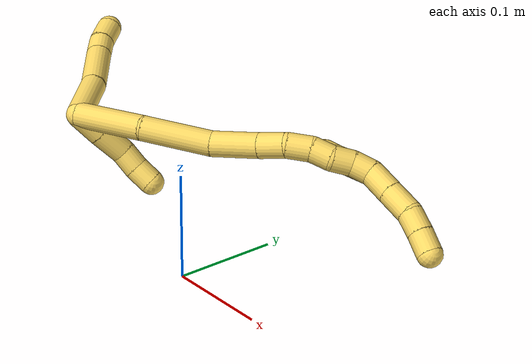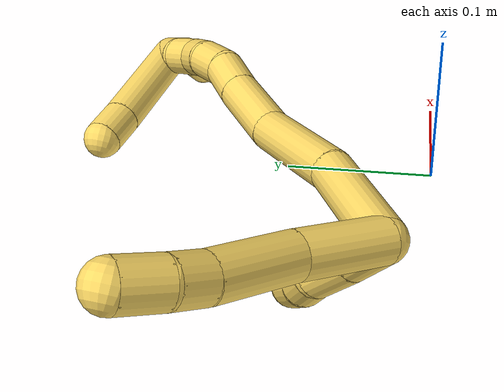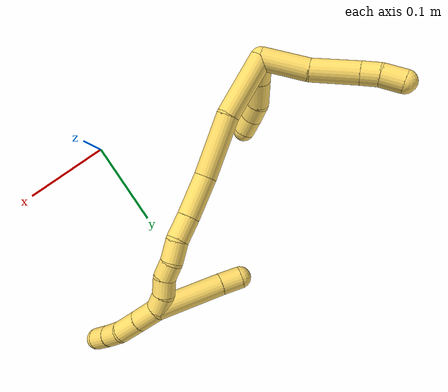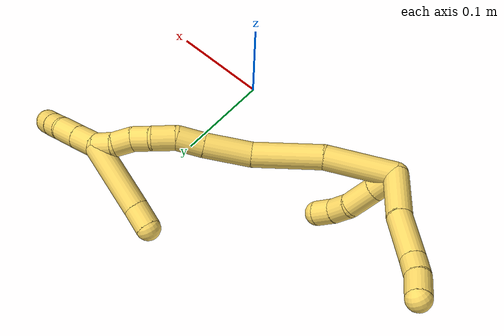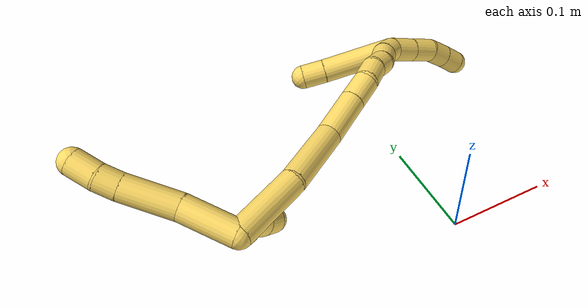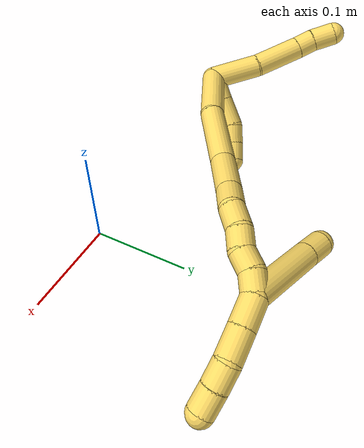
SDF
<sdf version="1.7">
 <world name="default">
  <model name="5">
   <static>0</static>
   <link name="5">
    <collision name="collision-cylinder-e_1_2_8">
     <pose>-0.02466 -0.00053 -0.009704 3.08703 -1.19538 -3.06147</pose>
     <geometry><cylinder><radius>0.0125</radius><length>0.053011</length></cylinder></geometry>
     <surface>
      <friction><ode><mu>1.16</mu><mu2>1.16</mu2><slip1>0</slip1><slip2>0</slip2></ode></friction>
      <contact><ode><kp>1e+06</kp><kd>1</kd><max_vel>0</max_vel><min_depth>0.001</min_depth></ode></contact>
     </surface>
    </collision>
    <visual name="visual-cylinder-e_1_2_8">
     <pose>-0.02466 -0.00053 -0.009704 3.08703 -1.19538 -3.06147</pose>
     <geometry><cylinder><radius>0.0125</radius><length>0.053011</length></cylinder></geometry>
     <material><ambient>1 0.858824 0.4 1</ambient></material>
    </visual>
    <collision name="collision-cylinder-e_2_8_9">
     <pose>-0.072739 -0.005918 -0.029535 2.69431 -1.12359 -2.44811</pose>
     <geometry><cylinder><radius>0.0125</radius><length>0.051947</length></cylinder></geometry>
     <surface>
      <friction><ode><mu>1.16</mu><mu2>1.16</mu2><slip1>0</slip1><slip2>0</slip2></ode></friction>
      <contact><ode><kp>1e+06</kp><kd>1</kd><max_vel>0</max_vel><min_depth>0.001</min_depth></ode></contact>
     </surface>
    </collision>
    <visual name="visual-cylinder-e_2_8_9">
     <pose>-0.072739 -0.005918 -0.029535 2.69431 -1.12359 -2.44811</pose>
     <geometry><cylinder><radius>0.0125</radius><length>0.051947</length></cylinder></geometry>
     <material><ambient>1 0.858824 0.4 1</ambient></material>
    </visual>
    <collision name="collision-cylinder-e_3_9_10">
     <pose>-0.105572 -0.012618 -0.042555 2.57463 -1.22149 -2.35288</pose>
     <geometry><cylinder><radius>0.0125</radius><length>0.020039</length></cylinder></geometry>
     <surface>
      <friction><ode><mu>1.16</mu><mu2>1.16</mu2><slip1>0</slip1><slip2>0</slip2></ode></friction>
      <contact><ode><kp>1e+06</kp><kd>1</kd><max_vel>0</max_vel><min_depth>0.001</min_depth></ode></contact>
     </surface>
    </collision>
    <visual name="visual-cylinder-e_3_9_10">
     <pose>-0.105572 -0.012618 -0.042555 2.57463 -1.22149 -2.35288</pose>
     <geometry><cylinder><radius>0.0125</radius><length>0.020039</length></cylinder></geometry>
     <material><ambient>1 0.858824 0.4 1</ambient></material>
    </visual>
    <collision name="collision-cylinder-e_4_10_6">
     <pose>-0.127033 -0.014503 -0.048791 3.12863 -1.30005 -3.12454</pose>
     <geometry><cylinder><radius>0.0125</radius><length>0.025002</length></cylinder></geometry>
     <surface>
      <friction><ode><mu>1.16</mu><mu2>1.16</mu2><slip1>0</slip1><slip2>0</slip2></ode></friction>
      <contact><ode><kp>1e+06</kp><kd>1</kd><max_vel>0</max_vel><min_depth>0.001</min_depth></ode></contact>
     </surface>
    </collision>
    <visual name="visual-cylinder-e_4_10_6">
     <pose>-0.127033 -0.014503 -0.048791 3.12863 -1.30005 -3.12454</pose>
     <geometry><cylinder><radius>0.0125</radius><length>0.025002</length></cylinder></geometry>
     <material><ambient>1 0.858824 0.4 1</ambient></material>
    </visual>
    <collision name="collision-cylinder-e_1_2_11">
     <pose>0.000751 0.012996 -0.004736 -1.92026 0.054268 -0.077515</pose>
     <geometry><cylinder><radius>0.0125</radius><length>0.027706</length></cylinder></geometry>
     <surface>
      <friction><ode><mu>1.16</mu><mu2>1.16</mu2><slip1>0</slip1><slip2>0</slip2></ode></friction>
      <contact><ode><kp>1e+06</kp><kd>1</kd><max_vel>0</max_vel><min_depth>0.001</min_depth></ode></contact>
     </surface>
    </collision>
    <visual name="visual-cylinder-e_1_2_11">
     <pose>0.000751 0.012996 -0.004736 -1.92026 0.054268 -0.077515</pose>
     <geometry><cylinder><radius>0.0125</radius><length>0.027706</length></cylinder></geometry>
     <material><ambient>1 0.858824 0.4 1</ambient></material>
    </visual>
    <collision name="collision-cylinder-e_2_11_12">
     <pose>0.00162 0.040628 -0.014446 -1.89837 0.007576 -0.010576</pose>
     <geometry><cylinder><radius>0.0125</radius><length>0.030915</length></cylinder></geometry>
     <surface>
      <friction><ode><mu>1.16</mu><mu2>1.16</mu2><slip1>0</slip1><slip2>0</slip2></ode></friction>
      <contact><ode><kp>1e+06</kp><kd>1</kd><max_vel>0</max_vel><min_depth>0.001</min_depth></ode></contact>
     </surface>
    </collision>
    <visual name="visual-cylinder-e_2_11_12">
     <pose>0.00162 0.040628 -0.014446 -1.89837 0.007576 -0.010576</pose>
     <geometry><cylinder><radius>0.0125</radius><length>0.030915</length></cylinder></geometry>
     <material><ambient>1 0.858824 0.4 1</ambient></material>
    </visual>
    <collision name="collision-cylinder-e_3_12_13">
     <pose>0.005074 0.064953 -0.021584 -1.79059 0.324254 -0.402734</pose>
     <geometry><cylinder><radius>0.0125</radius><length>0.020949</length></cylinder></geometry>
     <surface>
      <friction><ode><mu>1.16</mu><mu2>1.16</mu2><slip1>0</slip1><slip2>0</slip2></ode></friction>
      <contact><ode><kp>1e+06</kp><kd>1</kd><max_vel>0</max_vel><min_depth>0.001</min_depth></ode></contact>
     </surface>
    </collision>
    <visual name="visual-cylinder-e_3_12_13">
     <pose>0.005074 0.064953 -0.021584 -1.79059 0.324254 -0.402734</pose>
     <geometry><cylinder><radius>0.0125</radius><length>0.020949</length></cylinder></geometry>
     <material><ambient>1 0.858824 0.4 1</ambient></material>
    </visual>
    <collision name="collision-cylinder-e_4_13_5">
     <pose>0.011355 0.084423 -0.023944 -1.59077 0.292276 -0.298086</pose>
     <geometry><cylinder><radius>0.0125</radius><length>0.02043</length></cylinder></geometry>
     <surface>
      <friction><ode><mu>1.16</mu><mu2>1.16</mu2><slip1>0</slip1><slip2>0</slip2></ode></friction>
      <contact><ode><kp>1e+06</kp><kd>1</kd><max_vel>0</max_vel><min_depth>0.001</min_depth></ode></contact>
     </surface>
    </collision>
    <visual name="visual-cylinder-e_4_13_5">
     <pose>0.011355 0.084423 -0.023944 -1.59077 0.292276 -0.298086</pose>
     <geometry><cylinder><radius>0.0125</radius><length>0.02043</length></cylinder></geometry>
     <material><ambient>1 0.858824 0.4 1</ambient></material>
    </visual>
    <collision name="collision-cylinder-e_1_2_14">
     <pose>0.000848 0.029568 0.018937 -1.00115 0.024134 -0.013203</pose>
     <geometry><cylinder><radius>0.0125</radius><length>0.070245</length></cylinder></geometry>
     <surface>
      <friction><ode><mu>1.16</mu><mu2>1.16</mu2><slip1>0</slip1><slip2>0</slip2></ode></friction>
      <contact><ode><kp>1e+06</kp><kd>1</kd><max_vel>0</max_vel><min_depth>0.001</min_depth></ode></contact>
     </surface>
    </collision>
    <visual name="visual-cylinder-e_1_2_14">
     <pose>0.000848 0.029568 0.018937 -1.00115 0.024134 -0.013203</pose>
     <geometry><cylinder><radius>0.0125</radius><length>0.070245</length></cylinder></geometry>
     <material><ambient>1 0.858824 0.4 1</ambient></material>
    </visual>
    <collision name="collision-cylinder-e_2_14_15">
     <pose>-0.001087 0.091445 0.051314 -1.17661 -0.079349 0.052949</pose>
     <geometry><cylinder><radius>0.0125</radius><length>0.070206</length></cylinder></geometry>
     <surface>
      <friction><ode><mu>1.16</mu><mu2>1.16</mu2><slip1>0</slip1><slip2>0</slip2></ode></friction>
      <contact><ode><kp>1e+06</kp><kd>1</kd><max_vel>0</max_vel><min_depth>0.001</min_depth></ode></contact>
     </surface>
    </collision>
    <visual name="visual-cylinder-e_2_14_15">
     <pose>-0.001087 0.091445 0.051314 -1.17661 -0.079349 0.052949</pose>
     <geometry><cylinder><radius>0.0125</radius><length>0.070206</length></cylinder></geometry>
     <material><ambient>1 0.858824 0.4 1</ambient></material>
    </visual>
    <collision name="collision-cylinder-e_3_15_16">
     <pose>-0.007215 0.143082 0.078233 -0.961795 -0.141034 0.073674</pose>
     <geometry><cylinder><radius>0.0125</radius><length>0.047602</length></cylinder></geometry>
     <surface>
      <friction><ode><mu>1.16</mu><mu2>1.16</mu2><slip1>0</slip1><slip2>0</slip2></ode></friction>
      <contact><ode><kp>1e+06</kp><kd>1</kd><max_vel>0</max_vel><min_depth>0.001</min_depth></ode></contact>
     </surface>
    </collision>
    <visual name="visual-cylinder-e_3_15_16">
     <pose>-0.007215 0.143082 0.078233 -0.961795 -0.141034 0.073674</pose>
     <geometry><cylinder><radius>0.0125</radius><length>0.047602</length></cylinder></geometry>
     <material><ambient>1 0.858824 0.4 1</ambient></material>
    </visual>
    <collision name="collision-cylinder-e_4_16_17">
     <pose>-0.012464 0.172802 0.100334 -0.878238 -0.140045 0.065864</pose>
     <geometry><cylinder><radius>0.0125</radius><length>0.027272</length></cylinder></geometry>
     <surface>
      <friction><ode><mu>1.16</mu><mu2>1.16</mu2><slip1>0</slip1><slip2>0</slip2></ode></friction>
      <contact><ode><kp>1e+06</kp><kd>1</kd><max_vel>0</max_vel><min_depth>0.001</min_depth></ode></contact>
     </surface>
    </collision>
    <visual name="visual-cylinder-e_4_16_17">
     <pose>-0.012464 0.172802 0.100334 -0.878238 -0.140045 0.065864</pose>
     <geometry><cylinder><radius>0.0125</radius><length>0.027272</length></cylinder></geometry>
     <material><ambient>1 0.858824 0.4 1</ambient></material>
    </visual>
    <collision name="collision-cylinder-e_5_17_18">
     <pose>-0.016427 0.194284 0.113247 -1.20158 -0.171439 0.117639</pose>
     <geometry><cylinder><radius>0.0125</radius><length>0.024137</length></cylinder></geometry>
     <surface>
      <friction><ode><mu>1.16</mu><mu2>1.16</mu2><slip1>0</slip1><slip2>0</slip2></ode></friction>
      <contact><ode><kp>1e+06</kp><kd>1</kd><max_vel>0</max_vel><min_depth>0.001</min_depth></ode></contact>
     </surface>
    </collision>
    <visual name="visual-cylinder-e_5_17_18">
     <pose>-0.016427 0.194284 0.113247 -1.20158 -0.171439 0.117639</pose>
     <geometry><cylinder><radius>0.0125</radius><length>0.024137</length></cylinder></geometry>
     <material><ambient>1 0.858824 0.4 1</ambient></material>
    </visual>
    <collision name="collision-cylinder-e_6_18_19">
     <pose>-0.017646 0.215124 0.120099 -1.31406 0.083063 -0.064087</pose>
     <geometry><cylinder><radius>0.0125</radius><length>0.020231</length></cylinder></geometry>
     <surface>
      <friction><ode><mu>1.16</mu><mu2>1.16</mu2><slip1>0</slip1><slip2>0</slip2></ode></friction>
      <contact><ode><kp>1e+06</kp><kd>1</kd><max_vel>0</max_vel><min_depth>0.001</min_depth></ode></contact>
     </surface>
    </collision>
    <visual name="visual-cylinder-e_6_18_19">
     <pose>-0.017646 0.215124 0.120099 -1.31406 0.083063 -0.064087</pose>
     <geometry><cylinder><radius>0.0125</radius><length>0.020231</length></cylinder></geometry>
     <material><ambient>1 0.858824 0.4 1</ambient></material>
    </visual>
    <collision name="collision-cylinder-e_7_19_20">
     <pose>-0.019149 0.234606 0.123836 -1.45033 -0.23449 0.20802</pose>
     <geometry><cylinder><radius>0.0125</radius><length>0.020158</length></cylinder></geometry>
     <surface>
      <friction><ode><mu>1.16</mu><mu2>1.16</mu2><slip1>0</slip1><slip2>0</slip2></ode></friction>
      <contact><ode><kp>1e+06</kp><kd>1</kd><max_vel>0</max_vel><min_depth>0.001</min_depth></ode></contact>
     </surface>
    </collision>
    <visual name="visual-cylinder-e_7_19_20">
     <pose>-0.019149 0.234606 0.123836 -1.45033 -0.23449 0.20802</pose>
     <geometry><cylinder><radius>0.0125</radius><length>0.020158</length></cylinder></geometry>
     <material><ambient>1 0.858824 0.4 1</ambient></material>
    </visual>
    <collision name="collision-cylinder-e_8_20_1">
     <pose>-0.020554 0.254138 0.127154 -1.35587 0.093104 -0.074992</pose>
     <geometry><cylinder><radius>0.0125</radius><length>0.020149</length></cylinder></geometry>
     <surface>
      <friction><ode><mu>1.16</mu><mu2>1.16</mu2><slip1>0</slip1><slip2>0</slip2></ode></friction>
      <contact><ode><kp>1e+06</kp><kd>1</kd><max_vel>0</max_vel><min_depth>0.001</min_depth></ode></contact>
     </surface>
    </collision>
    <visual name="visual-cylinder-e_8_20_1">
     <pose>-0.020554 0.254138 0.127154 -1.35587 0.093104 -0.074992</pose>
     <geometry><cylinder><radius>0.0125</radius><length>0.020149</length></cylinder></geometry>
     <material><ambient>1 0.858824 0.4 1</ambient></material>
    </visual>
    <collision name="collision-cylinder-e_1_1_21">
     <pose>-0.012068 0.274827 0.13375 -1.18231 0.570464 -0.388677</pose>
     <geometry><cylinder><radius>0.0125</radius><length>0.027958</length></cylinder></geometry>
     <surface>
      <friction><ode><mu>1.16</mu><mu2>1.16</mu2><slip1>0</slip1><slip2>0</slip2></ode></friction>
      <contact><ode><kp>1e+06</kp><kd>1</kd><max_vel>0</max_vel><min_depth>0.001</min_depth></ode></contact>
     </surface>
    </collision>
    <visual name="visual-cylinder-e_1_1_21">
     <pose>-0.012068 0.274827 0.13375 -1.18231 0.570464 -0.388677</pose>
     <geometry><cylinder><radius>0.0125</radius><length>0.027958</length></cylinder></geometry>
     <material><ambient>1 0.858824 0.4 1</ambient></material>
    </visual>
    <collision name="collision-cylinder-e_2_21_22">
     <pose>0.003119 0.296574 0.142917 -1.16145 0.573074 -0.381981</pose>
     <geometry><cylinder><radius>0.0125</radius><length>0.028174</length></cylinder></geometry>
     <surface>
      <friction><ode><mu>1.16</mu><mu2>1.16</mu2><slip1>0</slip1><slip2>0</slip2></ode></friction>
      <contact><ode><kp>1e+06</kp><kd>1</kd><max_vel>0</max_vel><min_depth>0.001</min_depth></ode></contact>
     </surface>
    </collision>
    <visual name="visual-cylinder-e_2_21_22">
     <pose>0.003119 0.296574 0.142917 -1.16145 0.573074 -0.381981</pose>
     <geometry><cylinder><radius>0.0125</radius><length>0.028174</length></cylinder></geometry>
     <material><ambient>1 0.858824 0.4 1</ambient></material>
    </visual>
    <collision name="collision-cylinder-e_3_22_23">
     <pose>0.018382 0.315252 0.14872 -1.43209 0.768064 -0.676201</pose>
     <geometry><cylinder><radius>0.0125</radius><length>0.021953</length></cylinder></geometry>
     <surface>
      <friction><ode><mu>1.16</mu><mu2>1.16</mu2><slip1>0</slip1><slip2>0</slip2></ode></friction>
      <contact><ode><kp>1e+06</kp><kd>1</kd><max_vel>0</max_vel><min_depth>0.001</min_depth></ode></contact>
     </surface>
    </collision>
    <visual name="visual-cylinder-e_3_22_23">
     <pose>0.018382 0.315252 0.14872 -1.43209 0.768064 -0.676201</pose>
     <geometry><cylinder><radius>0.0125</radius><length>0.021953</length></cylinder></geometry>
     <material><ambient>1 0.858824 0.4 1</ambient></material>
    </visual>
    <collision name="collision-cylinder-e_4_23_4">
     <pose>0.034005 0.330528 0.150536 -1.47399 0.817952 -0.749546</pose>
     <geometry><cylinder><radius>0.0125</radius><length>0.021916</length></cylinder></geometry>
     <surface>
      <friction><ode><mu>1.16</mu><mu2>1.16</mu2><slip1>0</slip1><slip2>0</slip2></ode></friction>
      <contact><ode><kp>1e+06</kp><kd>1</kd><max_vel>0</max_vel><min_depth>0.001</min_depth></ode></contact>
     </surface>
    </collision>
    <visual name="visual-cylinder-e_4_23_4">
     <pose>0.034005 0.330528 0.150536 -1.47399 0.817952 -0.749546</pose>
     <geometry><cylinder><radius>0.0125</radius><length>0.021916</length></cylinder></geometry>
     <material><ambient>1 0.858824 0.4 1</ambient></material>
    </visual>
    <collision name="collision-cylinder-e_1_1_24">
     <pose>-0.037484 0.250279 0.098402 2.72526 -0.486554 -1.73138</pose>
     <geometry><cylinder><radius>0.0125</radius><length>0.076423</length></cylinder></geometry>
     <surface>
      <friction><ode><mu>1.16</mu><mu2>1.16</mu2><slip1>0</slip1><slip2>0</slip2></ode></friction>
      <contact><ode><kp>1e+06</kp><kd>1</kd><max_vel>0</max_vel><min_depth>0.001</min_depth></ode></contact>
     </surface>
    </collision>
    <visual name="visual-cylinder-e_1_1_24">
     <pose>-0.037484 0.250279 0.098402 2.72526 -0.486554 -1.73138</pose>
     <geometry><cylinder><radius>0.0125</radius><length>0.076423</length></cylinder></geometry>
     <material><ambient>1 0.858824 0.4 1</ambient></material>
    </visual>
    <collision name="collision-cylinder-e_2_24_3">
     <pose>-0.061236 0.232455 0.058182 2.7217 -0.522672 -1.79612</pose>
     <geometry><cylinder><radius>0.0125</radius><length>0.023577</length></cylinder></geometry>
     <surface>
      <friction><ode><mu>1.16</mu><mu2>1.16</mu2><slip1>0</slip1><slip2>0</slip2></ode></friction>
      <contact><ode><kp>1e+06</kp><kd>1</kd><max_vel>0</max_vel><min_depth>0.001</min_depth></ode></contact>
     </surface>
    </collision>
    <visual name="visual-cylinder-e_2_24_3">
     <pose>-0.061236 0.232455 0.058182 2.7217 -0.522672 -1.79612</pose>
     <geometry><cylinder><radius>0.0125</radius><length>0.023577</length></cylinder></geometry>
     <material><ambient>1 0.858824 0.4 1</ambient></material>
    </visual>
    <collision name="collision-sphere-3">
     <pose>-0.067121 0.228291 0.048855 0 -0 0</pose>
     <geometry><sphere><radius>0.0125</radius></sphere></geometry>
     <surface>
      <friction><ode><mu>1.16</mu><mu2>1.16</mu2><slip1>0</slip1><slip2>0</slip2></ode></friction>
      <contact><ode><kp>1e+06</kp><kd>1</kd><max_vel>0</max_vel><min_depth>0.001</min_depth></ode></contact>
     </surface>
    </collision>
    <visual name="visual-sphere-3">
     <pose>-0.067121 0.228291 0.048855 0 -0 0</pose>
     <geometry><sphere><radius>0.0125</radius></sphere></geometry>
     <material><ambient>1 0.858824 0.4 1</ambient></material>
    </visual>
    <collision name="collision-sphere-24">
     <pose>-0.055351 0.236619 0.06751 0 -0 0</pose>
     <geometry><sphere><radius>0.0125</radius></sphere></geometry>
     <surface>
      <friction><ode><mu>1.16</mu><mu2>1.16</mu2><slip1>0</slip1><slip2>0</slip2></ode></friction>
      <contact><ode><kp>1e+06</kp><kd>1</kd><max_vel>0</max_vel><min_depth>0.001</min_depth></ode></contact>
     </surface>
    </collision>
    <visual name="visual-sphere-24">
     <pose>-0.055351 0.236619 0.06751 0 -0 0</pose>
     <geometry><sphere><radius>0.0125</radius></sphere></geometry>
     <material><ambient>1 0.858824 0.4 1</ambient></material>
    </visual>
    <collision name="collision-sphere-4">
     <pose>0.042001 0.337985 0.15126 0 -0 0</pose>
     <geometry><sphere><radius>0.0125</radius></sphere></geometry>
     <surface>
      <friction><ode><mu>1.16</mu><mu2>1.16</mu2><slip1>0</slip1><slip2>0</slip2></ode></friction>
      <contact><ode><kp>1e+06</kp><kd>1</kd><max_vel>0</max_vel><min_depth>0.001</min_depth></ode></contact>
     </surface>
    </collision>
    <visual name="visual-sphere-4">
     <pose>0.042001 0.337985 0.15126 0 -0 0</pose>
     <geometry><sphere><radius>0.0125</radius></sphere></geometry>
     <material><ambient>1 0.858824 0.4 1</ambient></material>
    </visual>
    <collision name="collision-sphere-23">
     <pose>0.026008 0.323071 0.149812 0 -0 0</pose>
     <geometry><sphere><radius>0.0125</radius></sphere></geometry>
     <surface>
      <friction><ode><mu>1.16</mu><mu2>1.16</mu2><slip1>0</slip1><slip2>0</slip2></ode></friction>
      <contact><ode><kp>1e+06</kp><kd>1</kd><max_vel>0</max_vel><min_depth>0.001</min_depth></ode></contact>
     </surface>
    </collision>
    <visual name="visual-sphere-23">
     <pose>0.026008 0.323071 0.149812 0 -0 0</pose>
     <geometry><sphere><radius>0.0125</radius></sphere></geometry>
     <material><ambient>1 0.858824 0.4 1</ambient></material>
    </visual>
    <collision name="collision-sphere-22">
     <pose>0.010757 0.307433 0.147628 0 -0 0</pose>
     <geometry><sphere><radius>0.0125</radius></sphere></geometry>
     <surface>
      <friction><ode><mu>1.16</mu><mu2>1.16</mu2><slip1>0</slip1><slip2>0</slip2></ode></friction>
      <contact><ode><kp>1e+06</kp><kd>1</kd><max_vel>0</max_vel><min_depth>0.001</min_depth></ode></contact>
     </surface>
    </collision>
    <visual name="visual-sphere-22">
     <pose>0.010757 0.307433 0.147628 0 -0 0</pose>
     <geometry><sphere><radius>0.0125</radius></sphere></geometry>
     <material><ambient>1 0.858824 0.4 1</ambient></material>
    </visual>
    <collision name="collision-sphere-21">
     <pose>-0.004519 0.285716 0.138206 0 -0 0</pose>
     <geometry><sphere><radius>0.0125</radius></sphere></geometry>
     <surface>
      <friction><ode><mu>1.16</mu><mu2>1.16</mu2><slip1>0</slip1><slip2>0</slip2></ode></friction>
      <contact><ode><kp>1e+06</kp><kd>1</kd><max_vel>0</max_vel><min_depth>0.001</min_depth></ode></contact>
     </surface>
    </collision>
    <visual name="visual-sphere-21">
     <pose>-0.004519 0.285716 0.138206 0 -0 0</pose>
     <geometry><sphere><radius>0.0125</radius></sphere></geometry>
     <material><ambient>1 0.858824 0.4 1</ambient></material>
    </visual>
    <collision name="collision-sphere-1">
     <pose>-0.019617 0.263939 0.129293 0 -0 0</pose>
     <geometry><sphere><radius>0.0125</radius></sphere></geometry>
     <surface>
      <friction><ode><mu>1.16</mu><mu2>1.16</mu2><slip1>0</slip1><slip2>0</slip2></ode></friction>
      <contact><ode><kp>1e+06</kp><kd>1</kd><max_vel>0</max_vel><min_depth>0.001</min_depth></ode></contact>
     </surface>
    </collision>
    <visual name="visual-sphere-1">
     <pose>-0.019617 0.263939 0.129293 0 -0 0</pose>
     <geometry><sphere><radius>0.0125</radius></sphere></geometry>
     <material><ambient>1 0.858824 0.4 1</ambient></material>
    </visual>
    <collision name="collision-sphere-11">
     <pose>0.001503 0.025993 -0.009472 0 -0 0</pose>
     <geometry><sphere><radius>0.0125</radius></sphere></geometry>
     <surface>
      <friction><ode><mu>1.16</mu><mu2>1.16</mu2><slip1>0</slip1><slip2>0</slip2></ode></friction>
      <contact><ode><kp>1e+06</kp><kd>1</kd><max_vel>0</max_vel><min_depth>0.001</min_depth></ode></contact>
     </surface>
    </collision>
    <visual name="visual-sphere-11">
     <pose>0.001503 0.025993 -0.009472 0 -0 0</pose>
     <geometry><sphere><radius>0.0125</radius></sphere></geometry>
     <material><ambient>1 0.858824 0.4 1</ambient></material>
    </visual>
    <collision name="collision-sphere-6">
     <pose>-0.139079 -0.014546 -0.052134 0 -0 0</pose>
     <geometry><sphere><radius>0.0125</radius></sphere></geometry>
     <surface>
      <friction><ode><mu>1.16</mu><mu2>1.16</mu2><slip1>0</slip1><slip2>0</slip2></ode></friction>
      <contact><ode><kp>1e+06</kp><kd>1</kd><max_vel>0</max_vel><min_depth>0.001</min_depth></ode></contact>
     </surface>
    </collision>
    <visual name="visual-sphere-6">
     <pose>-0.139079 -0.014546 -0.052134 0 -0 0</pose>
     <geometry><sphere><radius>0.0125</radius></sphere></geometry>
     <material><ambient>1 0.858824 0.4 1</ambient></material>
    </visual>
    <collision name="collision-sphere-10">
     <pose>-0.114987 -0.01446 -0.045448 0 -0 0</pose>
     <geometry><sphere><radius>0.0125</radius></sphere></geometry>
     <surface>
      <friction><ode><mu>1.16</mu><mu2>1.16</mu2><slip1>0</slip1><slip2>0</slip2></ode></friction>
      <contact><ode><kp>1e+06</kp><kd>1</kd><max_vel>0</max_vel><min_depth>0.001</min_depth></ode></contact>
     </surface>
    </collision>
    <visual name="visual-sphere-10">
     <pose>-0.114987 -0.01446 -0.045448 0 -0 0</pose>
     <geometry><sphere><radius>0.0125</radius></sphere></geometry>
     <material><ambient>1 0.858824 0.4 1</ambient></material>
    </visual>
    <collision name="collision-sphere-9">
     <pose>-0.096158 -0.010776 -0.039662 0 -0 0</pose>
     <geometry><sphere><radius>0.0125</radius></sphere></geometry>
     <surface>
      <friction><ode><mu>1.16</mu><mu2>1.16</mu2><slip1>0</slip1><slip2>0</slip2></ode></friction>
      <contact><ode><kp>1e+06</kp><kd>1</kd><max_vel>0</max_vel><min_depth>0.001</min_depth></ode></contact>
     </surface>
    </collision>
    <visual name="visual-sphere-9">
     <pose>-0.096158 -0.010776 -0.039662 0 -0 0</pose>
     <geometry><sphere><radius>0.0125</radius></sphere></geometry>
     <material><ambient>1 0.858824 0.4 1</ambient></material>
    </visual>
    <collision name="collision-sphere-2">
     <geometry><sphere><radius>0.0125</radius></sphere></geometry>
     <surface>
      <friction><ode><mu>1.16</mu><mu2>1.16</mu2><slip1>0</slip1><slip2>0</slip2></ode></friction>
      <contact><ode><kp>1e+06</kp><kd>1</kd><max_vel>0</max_vel><min_depth>0.001</min_depth></ode></contact>
     </surface>
    </collision>
    <visual name="visual-sphere-2">
     <geometry><sphere><radius>0.0125</radius></sphere></geometry>
     <material><ambient>1 0.858824 0.4 1</ambient></material>
    </visual>
    <collision name="collision-sphere-19">
     <pose>-0.016807 0.224874 0.122658 0 -0 0</pose>
     <geometry><sphere><radius>0.0125</radius></sphere></geometry>
     <surface>
      <friction><ode><mu>1.16</mu><mu2>1.16</mu2><slip1>0</slip1><slip2>0</slip2></ode></friction>
      <contact><ode><kp>1e+06</kp><kd>1</kd><max_vel>0</max_vel><min_depth>0.001</min_depth></ode></contact>
     </surface>
    </collision>
    <visual name="visual-sphere-19">
     <pose>-0.016807 0.224874 0.122658 0 -0 0</pose>
     <geometry><sphere><radius>0.0125</radius></sphere></geometry>
     <material><ambient>1 0.858824 0.4 1</ambient></material>
    </visual>
    <collision name="collision-sphere-8">
     <pose>-0.04932 -0.00106 -0.019408 0 -0 0</pose>
     <geometry><sphere><radius>0.0125</radius></sphere></geometry>
     <surface>
      <friction><ode><mu>1.16</mu><mu2>1.16</mu2><slip1>0</slip1><slip2>0</slip2></ode></friction>
      <contact><ode><kp>1e+06</kp><kd>1</kd><max_vel>0</max_vel><min_depth>0.001</min_depth></ode></contact>
     </surface>
    </collision>
    <visual name="visual-sphere-8">
     <pose>-0.04932 -0.00106 -0.019408 0 -0 0</pose>
     <geometry><sphere><radius>0.0125</radius></sphere></geometry>
     <material><ambient>1 0.858824 0.4 1</ambient></material>
    </visual>
    <collision name="collision-sphere-12">
     <pose>0.001737 0.055264 -0.019419 0 -0 0</pose>
     <geometry><sphere><radius>0.0125</radius></sphere></geometry>
     <surface>
      <friction><ode><mu>1.16</mu><mu2>1.16</mu2><slip1>0</slip1><slip2>0</slip2></ode></friction>
      <contact><ode><kp>1e+06</kp><kd>1</kd><max_vel>0</max_vel><min_depth>0.001</min_depth></ode></contact>
     </surface>
    </collision>
    <visual name="visual-sphere-12">
     <pose>0.001737 0.055264 -0.019419 0 -0 0</pose>
     <geometry><sphere><radius>0.0125</radius></sphere></geometry>
     <material><ambient>1 0.858824 0.4 1</ambient></material>
    </visual>
    <collision name="collision-sphere-13">
     <pose>0.008411 0.074643 -0.023748 0 -0 0</pose>
     <geometry><sphere><radius>0.0125</radius></sphere></geometry>
     <surface>
      <friction><ode><mu>1.16</mu><mu2>1.16</mu2><slip1>0</slip1><slip2>0</slip2></ode></friction>
      <contact><ode><kp>1e+06</kp><kd>1</kd><max_vel>0</max_vel><min_depth>0.001</min_depth></ode></contact>
     </surface>
    </collision>
    <visual name="visual-sphere-13">
     <pose>0.008411 0.074643 -0.023748 0 -0 0</pose>
     <geometry><sphere><radius>0.0125</radius></sphere></geometry>
     <material><ambient>1 0.858824 0.4 1</ambient></material>
    </visual>
    <collision name="collision-sphere-5">
     <pose>0.014298 0.094203 -0.024139 0 -0 0</pose>
     <geometry><sphere><radius>0.0125</radius></sphere></geometry>
     <surface>
      <friction><ode><mu>1.16</mu><mu2>1.16</mu2><slip1>0</slip1><slip2>0</slip2></ode></friction>
      <contact><ode><kp>1e+06</kp><kd>1</kd><max_vel>0</max_vel><min_depth>0.001</min_depth></ode></contact>
     </surface>
    </collision>
    <visual name="visual-sphere-5">
     <pose>0.014298 0.094203 -0.024139 0 -0 0</pose>
     <geometry><sphere><radius>0.0125</radius></sphere></geometry>
     <material><ambient>1 0.858824 0.4 1</ambient></material>
    </visual>
    <collision name="collision-sphere-14">
     <pose>0.001695 0.059136 0.037875 0 -0 0</pose>
     <geometry><sphere><radius>0.0125</radius></sphere></geometry>
     <surface>
      <friction><ode><mu>1.16</mu><mu2>1.16</mu2><slip1>0</slip1><slip2>0</slip2></ode></friction>
      <contact><ode><kp>1e+06</kp><kd>1</kd><max_vel>0</max_vel><min_depth>0.001</min_depth></ode></contact>
     </surface>
    </collision>
    <visual name="visual-sphere-14">
     <pose>0.001695 0.059136 0.037875 0 -0 0</pose>
     <geometry><sphere><radius>0.0125</radius></sphere></geometry>
     <material><ambient>1 0.858824 0.4 1</ambient></material>
    </visual>
    <collision name="collision-sphere-15">
     <pose>-0.00387 0.123754 0.064753 0 -0 0</pose>
     <geometry><sphere><radius>0.0125</radius></sphere></geometry>
     <surface>
      <friction><ode><mu>1.16</mu><mu2>1.16</mu2><slip1>0</slip1><slip2>0</slip2></ode></friction>
      <contact><ode><kp>1e+06</kp><kd>1</kd><max_vel>0</max_vel><min_depth>0.001</min_depth></ode></contact>
     </surface>
    </collision>
    <visual name="visual-sphere-15">
     <pose>-0.00387 0.123754 0.064753 0 -0 0</pose>
     <geometry><sphere><radius>0.0125</radius></sphere></geometry>
     <material><ambient>1 0.858824 0.4 1</ambient></material>
    </visual>
    <collision name="collision-sphere-16">
     <pose>-0.010561 0.16241 0.091713 0 -0 0</pose>
     <geometry><sphere><radius>0.0125</radius></sphere></geometry>
     <surface>
      <friction><ode><mu>1.16</mu><mu2>1.16</mu2><slip1>0</slip1><slip2>0</slip2></ode></friction>
      <contact><ode><kp>1e+06</kp><kd>1</kd><max_vel>0</max_vel><min_depth>0.001</min_depth></ode></contact>
     </surface>
    </collision>
    <visual name="visual-sphere-16">
     <pose>-0.010561 0.16241 0.091713 0 -0 0</pose>
     <geometry><sphere><radius>0.0125</radius></sphere></geometry>
     <material><ambient>1 0.858824 0.4 1</ambient></material>
    </visual>
    <collision name="collision-sphere-17">
     <pose>-0.014368 0.183194 0.108956 0 -0 0</pose>
     <geometry><sphere><radius>0.0125</radius></sphere></geometry>
     <surface>
      <friction><ode><mu>1.16</mu><mu2>1.16</mu2><slip1>0</slip1><slip2>0</slip2></ode></friction>
      <contact><ode><kp>1e+06</kp><kd>1</kd><max_vel>0</max_vel><min_depth>0.001</min_depth></ode></contact>
     </surface>
    </collision>
    <visual name="visual-sphere-17">
     <pose>-0.014368 0.183194 0.108956 0 -0 0</pose>
     <geometry><sphere><radius>0.0125</radius></sphere></geometry>
     <material><ambient>1 0.858824 0.4 1</ambient></material>
    </visual>
    <collision name="collision-sphere-18">
     <pose>-0.018486 0.205374 0.117539 0 -0 0</pose>
     <geometry><sphere><radius>0.0125</radius></sphere></geometry>
     <surface>
      <friction><ode><mu>1.16</mu><mu2>1.16</mu2><slip1>0</slip1><slip2>0</slip2></ode></friction>
      <contact><ode><kp>1e+06</kp><kd>1</kd><max_vel>0</max_vel><min_depth>0.001</min_depth></ode></contact>
     </surface>
    </collision>
    <visual name="visual-sphere-18">
     <pose>-0.018486 0.205374 0.117539 0 -0 0</pose>
     <geometry><sphere><radius>0.0125</radius></sphere></geometry>
     <material><ambient>1 0.858824 0.4 1</ambient></material>
    </visual>
    <collision name="collision-sphere-20">
     <pose>-0.021491 0.244338 0.125014 0 -0 0</pose>
     <geometry><sphere><radius>0.0125</radius></sphere></geometry>
     <surface>
      <friction><ode><mu>1.16</mu><mu2>1.16</mu2><slip1>0</slip1><slip2>0</slip2></ode></friction>
      <contact><ode><kp>1e+06</kp><kd>1</kd><max_vel>0</max_vel><min_depth>0.001</min_depth></ode></contact>
     </surface>
    </collision>
    <visual name="visual-sphere-20">
     <pose>-0.021491 0.244338 0.125014 0 -0 0</pose>
     <geometry><sphere><radius>0.0125</radius></sphere></geometry>
     <material><ambient>1 0.858824 0.4 1</ambient></material>
    </visual>
    <inertial>
     <pose>-0.020842 0.129965 0.052261 0 -0 0</pose>
     <mass>0.75</mass>
     <inertia><ixx>2.8e-05</ixx><ixy>0</ixy><ixz>0</ixz><iyy>7.4e-05</iyy><iyz>0</iyz><izz>-2.5e-05</izz></inertia>
    </inertial>
   </link>
   <pose>-0.204238 0.029272 0.081809 -0.56822 0.504306 -1.102</pose>
  </model>
 </world>
</sdf>
